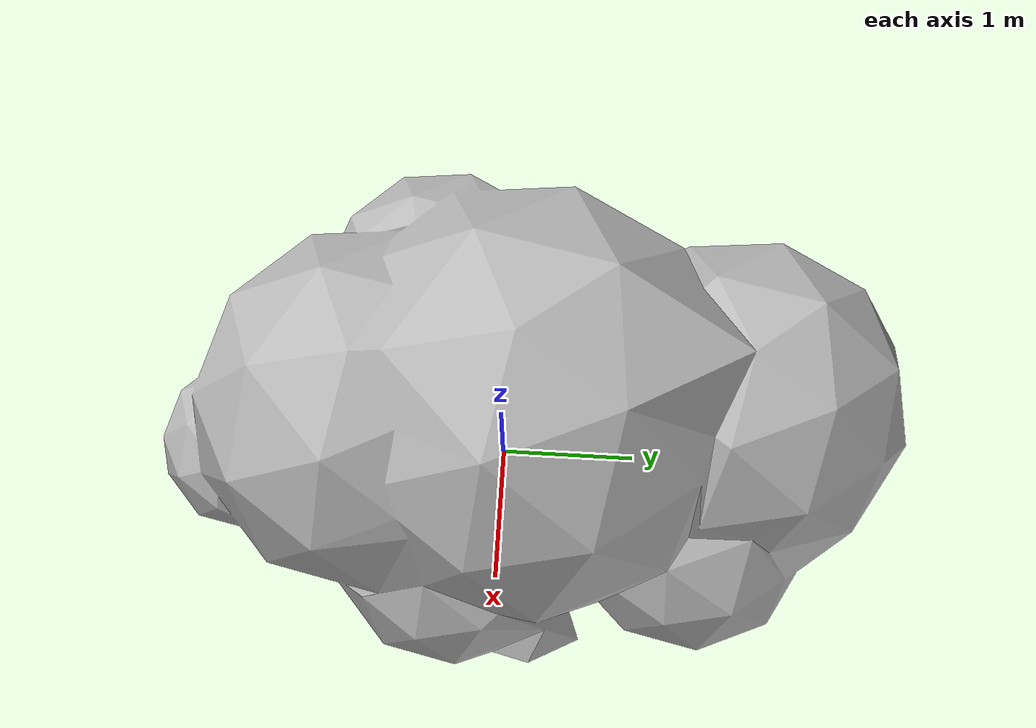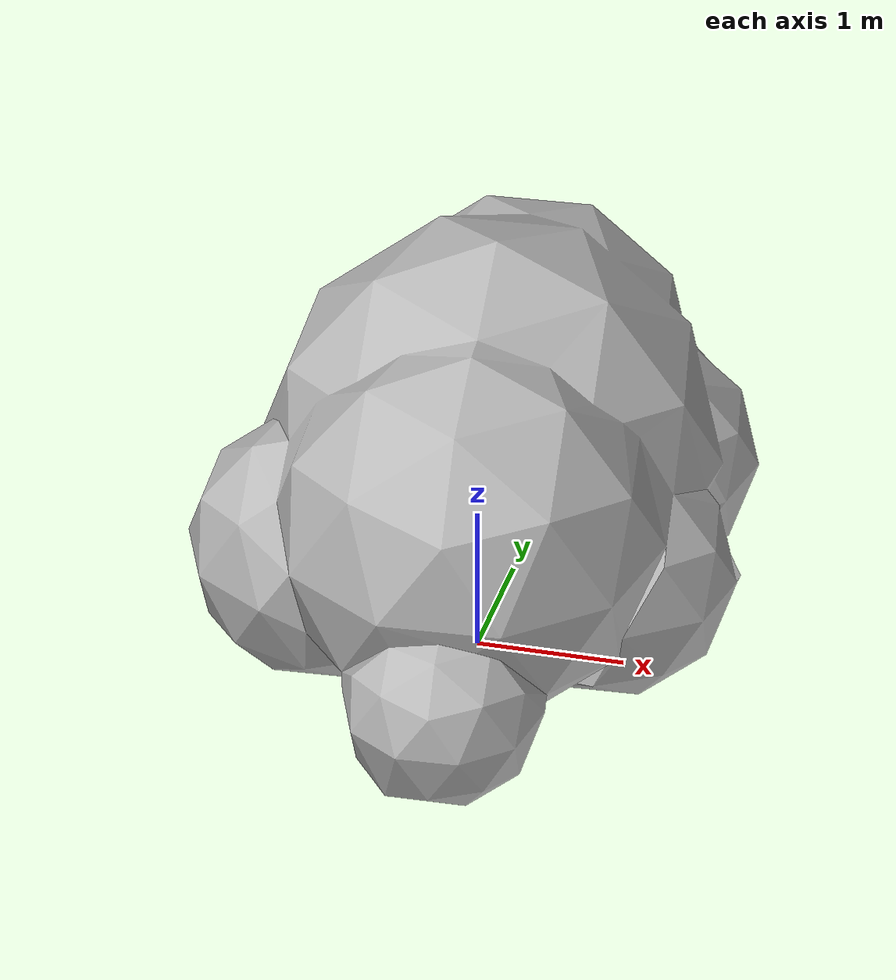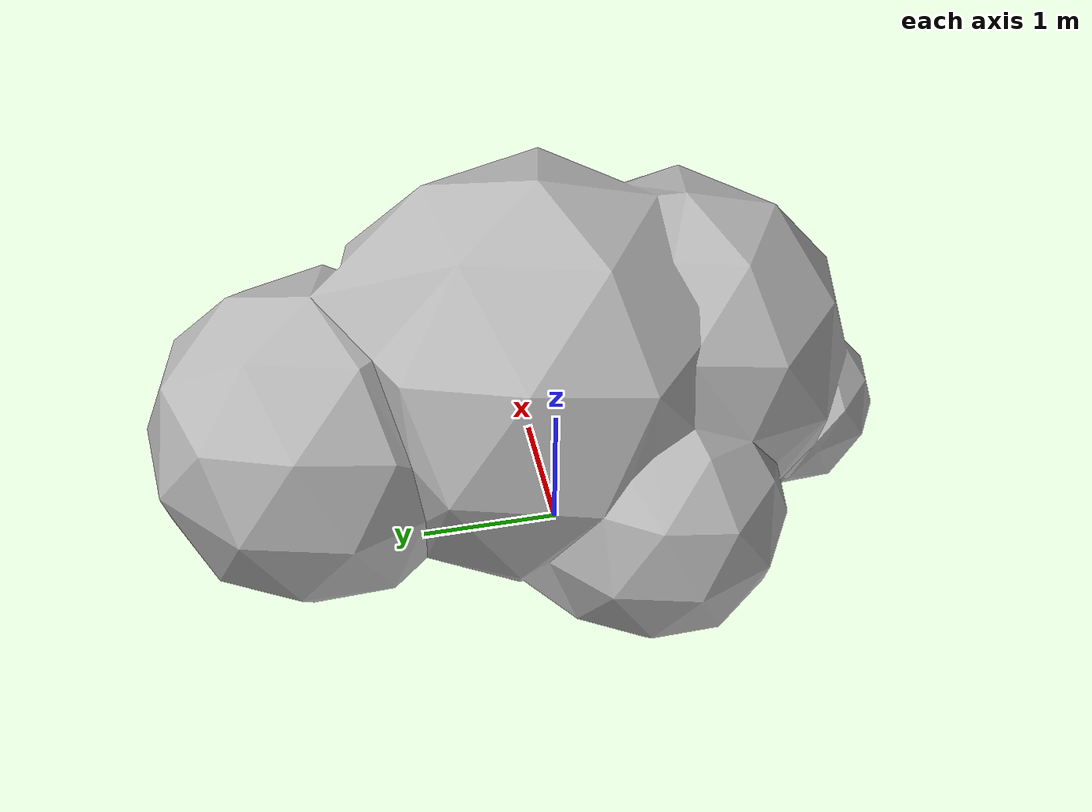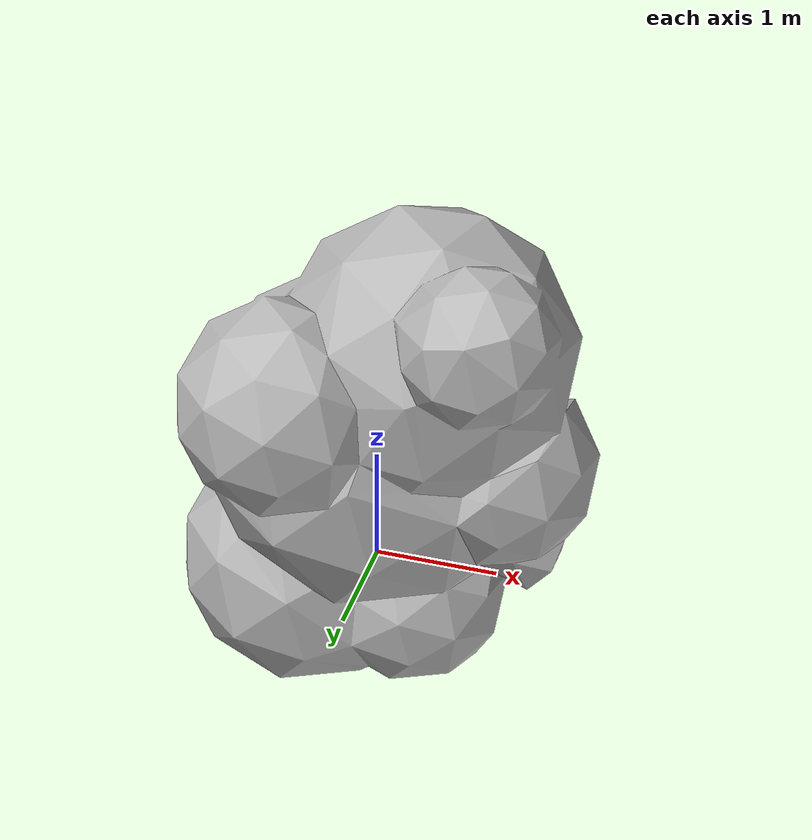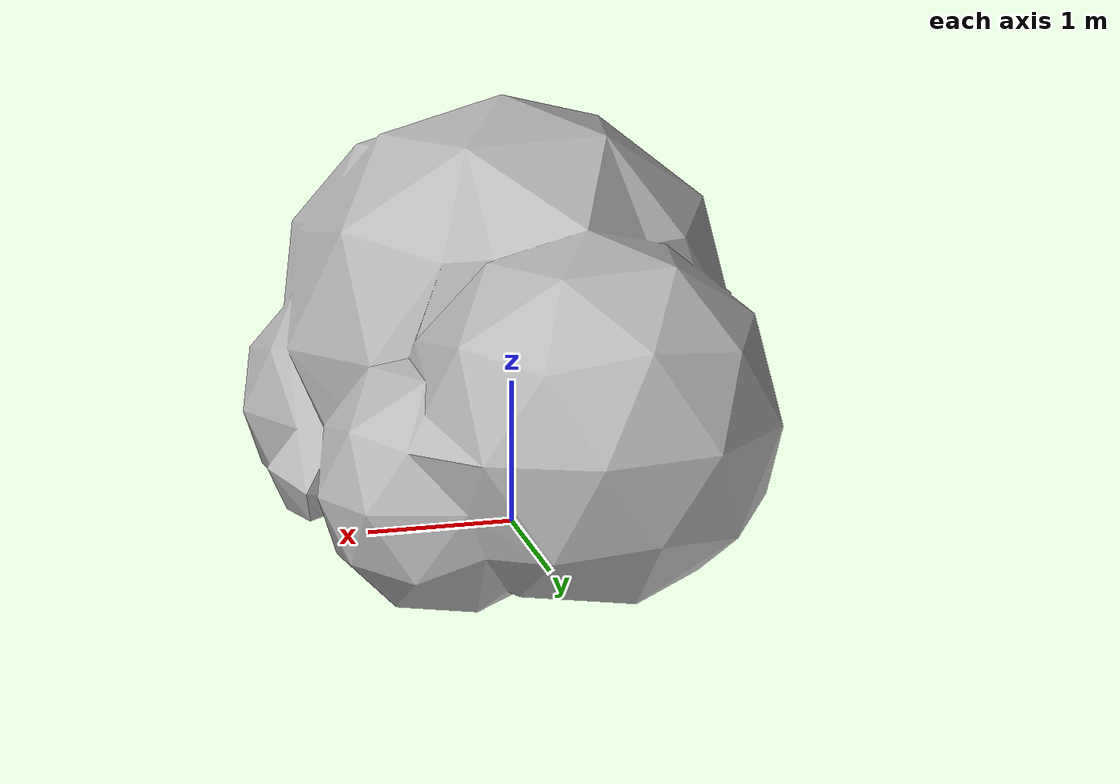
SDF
<sdf version="1.7">
<model name="rocks_2">
    <static>true</static>
    <link name="rocks_2">
        <pose>0 0 0 0 0 0</pose>
        <collision name="rocks_2_collision">
            <geometry>
                <mesh>
                    <uri>model://rocks_2/meshes/rocks_2.dae</uri>
                </mesh>
            </geometry>
        </collision>
        <visual name="rocks_2_visual">
            <geometry>
                <mesh>
                    <uri>model://rocks_2/meshes/rocks_2.dae</uri>
                </mesh>
            </geometry>
        </visual>
    </link>
</model>
</sdf>
